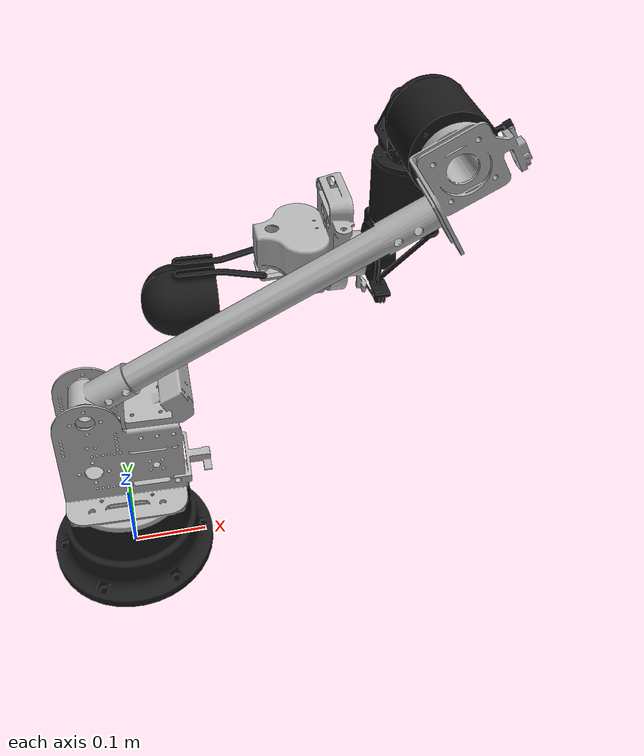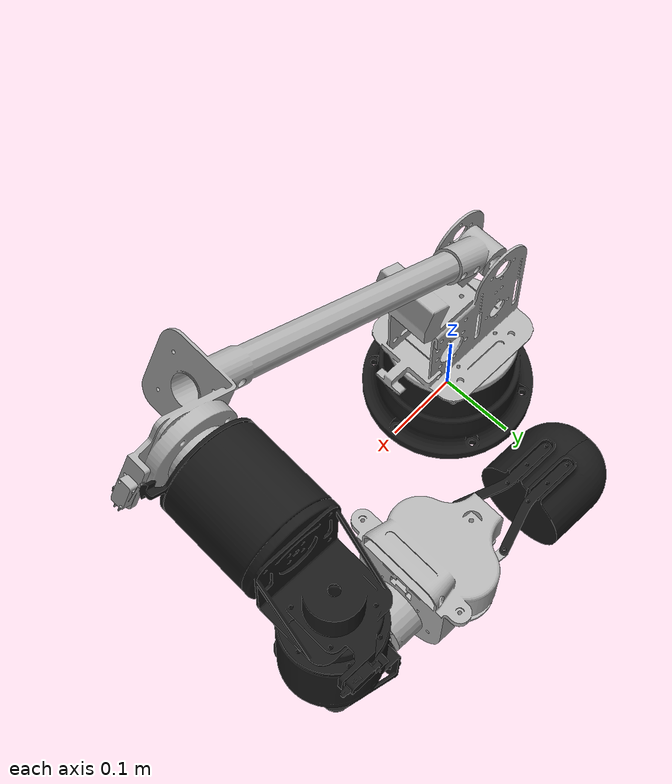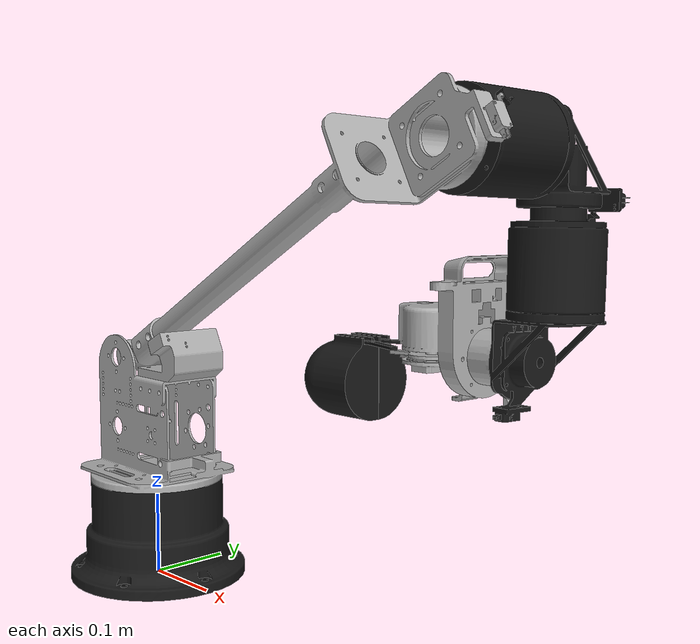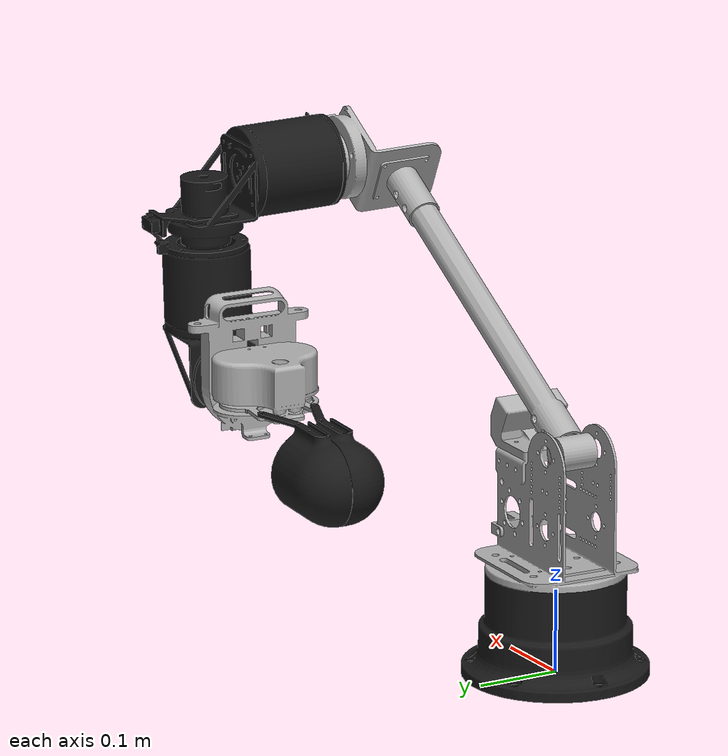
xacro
<?xml version="1.0"?>
<robot xmlns:xacro="http://www.ros.org/wiki/xacro" name="legacy_pkg">
    <xacro:arg name="initial_positions_file" default="initial_positions.yaml" />

    <!-- Import legacy_pkg urdf file -->
    <xacro:include filename="$(find legacy_pkg)/urdf/legacy.urdf" />

    <!-- Import control_xacro -->
    <xacro:include filename="legacy_pkg.ros2_control.xacro" />

    <xacro:legacy_pkg_ros2_control name="FakeSystem" initial_positions_file="$(arg initial_positions_file)"/>

</robot>

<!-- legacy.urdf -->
<robot name="legacy_pkg">

  <material name="black"><color rgba="0.1 0.1 0.1 1"/></material>
  <material name="light_grey"><color rgba="0.7 0.7 0.7 1"/></material>

  <link name="world"/>
  <joint name="world_to_base" type="fixed">
    <parent link="world"/><child link="base_link"/>
    <origin xyz="0 0 0" rpy="0 0 0"/>
  </joint>

  <link name="base_link">
    <inertial>
      <origin xyz="4.9960036108132E-16 1.14491749414469E-15 0.0535613956407754" rpy="0 0 0" />
      <mass value="1.15555347830253" />
      <inertia ixx="0.00564" ixy="0" ixz="0" iyy="0.00564" iyz="0" izz="0.00783" />
    </inertial>
    <visual><geometry><mesh filename="package://legacy_pkg/meshes/base_link.STL" /></geometry><material name="black"/></visual>
    <collision><geometry><mesh filename="package://legacy_pkg/meshes/base_link.STL" /></geometry></collision>
  </link>

  <link name="Link_1">
    <inertial>
      <origin xyz="0.0196425023341312 -0.00104959271552872 0.0656443813689512" rpy="0 0 0" />
      <mass value="0.608452090334793" /><inertia ixx="0.00095" ixy="8.8E-06" ixz="2.7E-05" iyy="0.00119" iyz="4.1E-06" izz="0.00137" />
    </inertial>
    <visual><geometry><mesh filename="package://legacy_pkg/meshes/Link_1.STL" /></geometry><material name="light_grey"/></visual>
    <collision><geometry><mesh filename="package://legacy_pkg/meshes/Link_1.STL" /></geometry></collision>
  </link>
  <joint name="Joint_1" type="revolute">
    <origin xyz="0 0 0.122" rpy="0 0 0" /><parent link="base_link" /><child link="Link_1" /><axis xyz="0 0 1" />
    <limit lower="-0.017" upper="3.159" effort="150.0" velocity="1.0" />
    <dynamics damping="1.5" friction="1.0"/>
  </joint>

  <link name="Link_2">
    <inertial>
      <origin xyz="0.354361236061949 0.19455847062407 -0.0432395729024948" rpy="0 0 0" />
      <mass value="0.497896346542447" /><inertia ixx="0.00076" ixy="-0.0005" ixz="2.9E-05" iyy="0.00141" iyz="1.1E-05" izz="0.0016" />
    </inertial>
    <visual><geometry><mesh filename="package://legacy_pkg/meshes/Link_2.STL" /></geometry><material name="light_grey"/></visual>
    <collision><geometry><mesh filename="package://legacy_pkg/meshes/Link_2.STL" /></geometry></collision>
  </link>
  <joint name="Joint_2" type="revolute">
    <origin xyz="-0.036133331113001 0.00118601468703684 0.1530586337599" rpy="1.5707963267949 0 -0.032725637613237" />
    <parent link="Link_1" /><child link="Link_2" /><axis xyz="0 0 -1" />
    <limit lower="-3.5" upper="0.017" effort="300.0" velocity="1.0" />
    <dynamics damping="3.0" friction="2.0"/>
  </joint>

  <link name="Link_3">
    <inertial>
      <origin xyz="0.000636310315262213 0.0189159957999437 0.00970618985093467" rpy="0 0 0" />
      <mass value="0.813067644941304" /><inertia ixx="0.00128" ixy="-4.1E-07" ixz="-4.4E-06" iyy="0.00122" iyz="-2.0E-05" izz="0.00152" />
    </inertial>
    <visual><geometry><mesh filename="package://legacy_pkg/meshes/Link_3.STL" /></geometry><material name="black"/></visual>
    <collision><geometry><mesh filename="package://legacy_pkg/meshes/Link_3.STL" /></geometry></collision>
  </link>
  <joint name="Joint_3" type="revolute">
    <origin xyz="0.46477233991376 0.251598125455598 -0.158400697540068" rpy="3.11060343559603 -0.0171149317961304 0.00154520263816538" />
    <parent link="Link_2" /><child link="Link_3" /><axis xyz="0 0 -1" />
    <limit lower="-0.017" upper="3.159" effort="200.0" velocity="1.0" />
    <dynamics damping="2.0" friction="1.5"/>
  </joint>

  <link name="Link_4">
    <inertial>
      <origin xyz="-0.00841197038063141 -0.000161880434022071 -0.00469047255587729" rpy="0 0 0" />
      <mass value="0.638395687976236" /><inertia ixx="0.00088" ixy="1.4E-06" ixz="1.4E-05" iyy="0.00085" iyz="-3.9E-06" izz="0.00109" />
    </inertial>
    <visual><geometry><mesh filename="package://legacy_pkg/meshes/Link_4.STL" /></geometry><material name="black"/></visual>
    <collision><geometry><mesh filename="package://legacy_pkg/meshes/Link_4.STL" /></geometry></collision>
  </link>
  <joint name="Joint_4" type="revolute">
    <origin xyz="0.00193422465986332 0.158595285492459 0.0806070799354807" rpy="-1.5707963267949 -0.0498682123174333 -0.0121953737359868" />
    <parent link="Link_3" /><child link="Link_4" />
    <axis xyz="0 0 1" /> <limit lower="-0.017" upper="3.159" effort="80.0" velocity="2.0" />
  </joint>

  <link name="Link_5">
    <inertial>
      <origin xyz="-0.00522938401848849 -0.0194082765628301 0.0213025001251292" rpy="0 0 0" />
      <mass value="0.456511376776955" /><inertia ixx="0.00057" ixy="2.6E-05" ixz="7.8E-06" iyy="0.00065" iyz="2.7E-05" izz="0.00091" />
    </inertial>
    <visual><geometry><mesh filename="package://legacy_pkg/meshes/Link_5.STL" /></geometry><material name="light_grey"/></visual>
    <collision><geometry><mesh filename="package://legacy_pkg/meshes/Link_5.STL" /></geometry></collision>
  </link>
  <joint name="Joint_5" type="revolute">
    <origin xyz="-0.0974961314222137 -0.00465257036148067 0.0731070799341241" rpy="1.5707963267949 -0.250189199838187 -1.52311193748308" />
    <parent link="Link_4" /><child link="Link_5" /><axis xyz="0 0 -1" />
    <limit lower="-0.017" upper="3.159" effort="80.0" velocity="2.0" />
  </joint>

  <link name="ee_link"/>
  <joint name="ee_fixed_joint" type="fixed">
    <parent link="Link_5"/>
    <child link="ee_link"/>
    <origin xyz="0.0018 0.0064 0.0555" rpy="0 0 0"/>
  </joint>

  <link name="Servo_Gear">
    <inertial><mass value="0.05"/><inertia ixx="0.0001" ixy="0" ixz="0" iyy="0.0001" iyz="0" izz="0.0001"/></inertial>
    <visual><geometry><mesh filename="package://legacy_pkg/meshes/Servo_Gear.STL" /></geometry><material name="light_grey"/></visual>
    <collision><geometry><mesh filename="package://legacy_pkg/meshes/Servo_Gear.STL" /></geometry></collision>
  </link>
  <joint name="Servo_Gear_Joint" type="revolute">
    <origin xyz="-0.0262574229609702 0.0173435281393812 0.0555000000000031" rpy="1.57079632679488 1.52345600277097 -0.277058128904501" />
    <parent link="Link_5" /><child link="Servo_Gear" /><axis xyz="0 0 1" /><limit lower="-1.5" upper="1.5" effort="40.0" velocity="2.0" />
  </joint>

  <link name="Follower_Gear">
    <inertial><mass value="0.05"/><inertia ixx="0.0001" ixy="0" ixz="0" iyy="0.0001" iyz="0" izz="0.0001"/></inertial>
    <visual><geometry><mesh filename="package://legacy_pkg/meshes/Follower_Gear.STL" /></geometry><material name="light_grey"/></visual>
    <collision><geometry><mesh filename="package://legacy_pkg/meshes/Follower_Gear.STL" /></geometry></collision>
  </link>
  <joint name="Follower_Gear_Joint" type="revolute">
    <origin xyz="0.029895328042482 -0.00455073137108009 0.0554999999998389" rpy="1.57079632679488 1.52345600277097 -0.277058128904509" />
    <parent link="Link_5" /><child link="Follower_Gear" /><axis xyz="0 0 -1" /><limit lower="-1.5" upper="1.5" effort="40.0" velocity="2.0" />
  </joint>

  <link name="Left_Gripper">
    <inertial><mass value="0.1"/><inertia ixx="0.0002" ixy="0" ixz="0" iyy="0.0002" iyz="0" izz="0.0002"/></inertial>
    <visual><geometry><mesh filename="package://legacy_pkg/meshes/Left_Gripper.STL" /></geometry><material name="black"/></visual>
    <collision><geometry><mesh filename="package://legacy_pkg/meshes/Left_Gripper.STL" /></geometry></collision>
  </link>
  <joint name="Left_Gripper_Joint" type="revolute">
    <origin xyz="-0.0599831378951265 -0.00142237643539467 0.00970000392485049" rpy="0 0 0" /><parent link="Servo_Gear" /><child link="Left_Gripper" />
    <axis xyz="0 0 -1" /><limit lower="-1.5" upper="1.5" effort="40.0" velocity="2.0" />
  </joint>

  <link name="Right_Gripper">
    <inertial><mass value="0.1"/><inertia ixx="0.0002" ixy="0" ixz="0" iyy="0.0002" iyz="0" izz="0.0002"/></inertial>
    <visual><geometry><mesh filename="package://legacy_pkg/meshes/Right_Gripper.STL" /></geometry><material name="black"/></visual>
    <collision><geometry><mesh filename="package://legacy_pkg/meshes/Right_Gripper.STL" /></geometry></collision>
  </link>
  <joint name="Right_Gripper_Joint" type="revolute">
    <origin xyz="-0.0595800110279714 0.00708676836980149 0.004" rpy="0 0 0" /><parent link="Follower_Gear" /><child link="Right_Gripper" />
    <axis xyz="0 0 1" /><limit lower="-1.5" upper="1.5" effort="40.0" velocity="2.0" />
  </joint>

  <gazebo reference="base_link"><visual><material><ambient>0.1 0.1 0.1 1</ambient><diffuse>0.1 0.1 0.1 1</diffuse></material></visual></gazebo>
  <gazebo reference="Link_1"><visual><material><ambient>0.7 0.7 0.7 1</ambient><diffuse>0.7 0.7 0.7 1</diffuse></material></visual></gazebo>
  <gazebo reference="Link_2"><visual><material><ambient>0.7 0.7 0.7 1</ambient><diffuse>0.7 0.7 0.7 1</diffuse></material></visual></gazebo>
  <gazebo reference="Link_3"><visual><material><ambient>0.1 0.1 0.1 1</ambient><diffuse>0.1 0.1 0.1 1</diffuse></material></visual></gazebo>
  <gazebo reference="Link_4"><visual><material><ambient>0.1 0.1 0.1 1</ambient><diffuse>0.1 0.1 0.1 1</diffuse></material></visual></gazebo>
  <gazebo reference="Link_5"><visual><material><ambient>0.7 0.7 0.7 1</ambient><diffuse>0.7 0.7 0.7 1</diffuse></material></visual></gazebo>
  <gazebo reference="Servo_Gear"><visual><material><ambient>0.7 0.7 0.7 1</ambient><diffuse>0.7 0.7 0.7 1</diffuse></material></visual></gazebo>
  <gazebo reference="Follower_Gear"><visual><material><ambient>0.7 0.7 0.7 1</ambient><diffuse>0.7 0.7 0.7 1</diffuse></material></visual></gazebo>
  <gazebo reference="Left_Gripper"><visual><material><ambient>0.1 0.1 0.1 1</ambient><diffuse>0.1 0.1 0.1 1</diffuse></material></visual></gazebo>
  <gazebo reference="Right_Gripper"><visual><material><ambient>0.1 0.1 0.1 1</ambient><diffuse>0.1 0.1 0.1 1</diffuse></material></visual></gazebo>

  <ros2_control name="RobotSystem" type="system">
    <hardware><plugin>gz_ros2_control/GazeboSimSystem</plugin></hardware>
    <joint name="Joint_1"><command_interface name="position"/><state_interface name="position"/><state_interface name="velocity"/></joint>
    <joint name="Joint_2"><command_interface name="position"/><state_interface name="position"/><state_interface name="velocity"/></joint>
    <joint name="Joint_3"><command_interface name="position"/><state_interface name="position"/><state_interface name="velocity"/></joint>
    <joint name="Joint_4"><command_interface name="position"/><state_interface name="position"/><state_interface name="velocity"/></joint>
    <joint name="Joint_5"><command_interface name="position"/><state_interface name="position"/><state_interface name="velocity"/></joint>
    <joint name="Servo_Gear_Joint"><command_interface name="position"/><state_interface name="position"/><state_interface name="velocity"/></joint>
    <joint name="Left_Gripper_Joint"><command_interface name="position"/><state_interface name="position"/><state_interface name="velocity"/></joint>
    <joint name="Follower_Gear_Joint"><command_interface name="position"/><state_interface name="position"/><state_interface name="velocity"/></joint>
    <joint name="Right_Gripper_Joint"><command_interface name="position"/><state_interface name="position"/><state_interface name="velocity"/></joint>
  </ros2_control>

  <gazebo>
    <plugin filename="gz_ros2_control-system" name="gz_ros2_control::GazeboSimROS2ControlPlugin">
      <position_proportional_gain>4</position_proportional_gain>
      <parameters>package://legacy_moveit/config/ros2_controllers.yaml</parameters>
    </plugin>
  </gazebo>

</robot>
